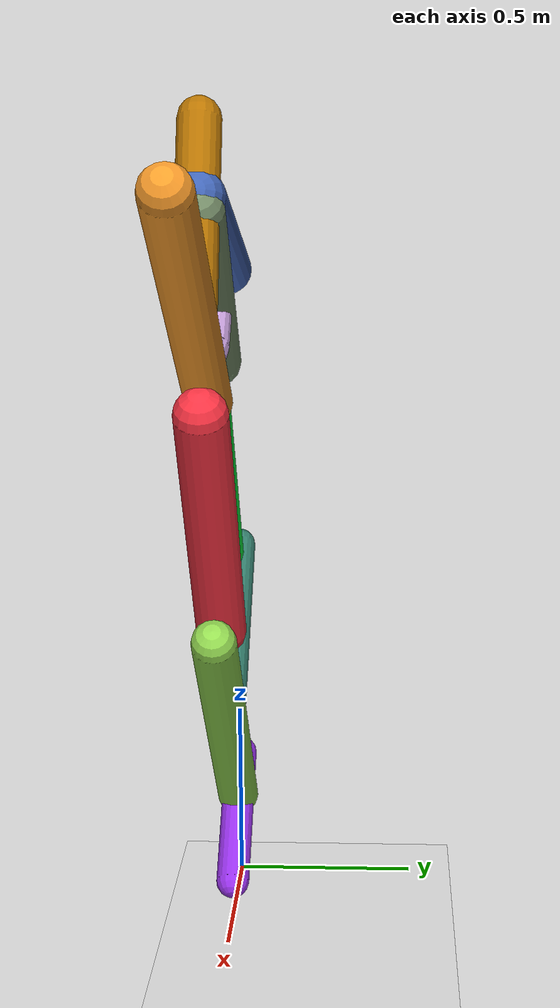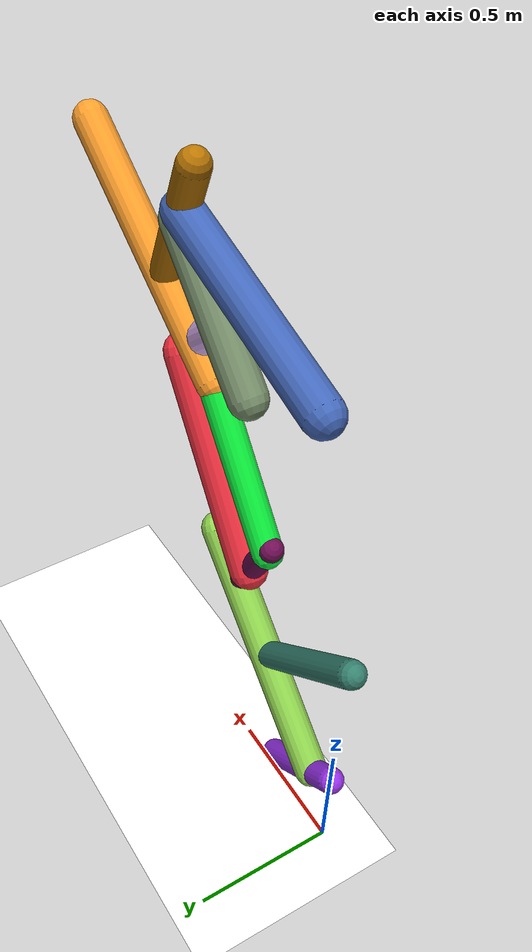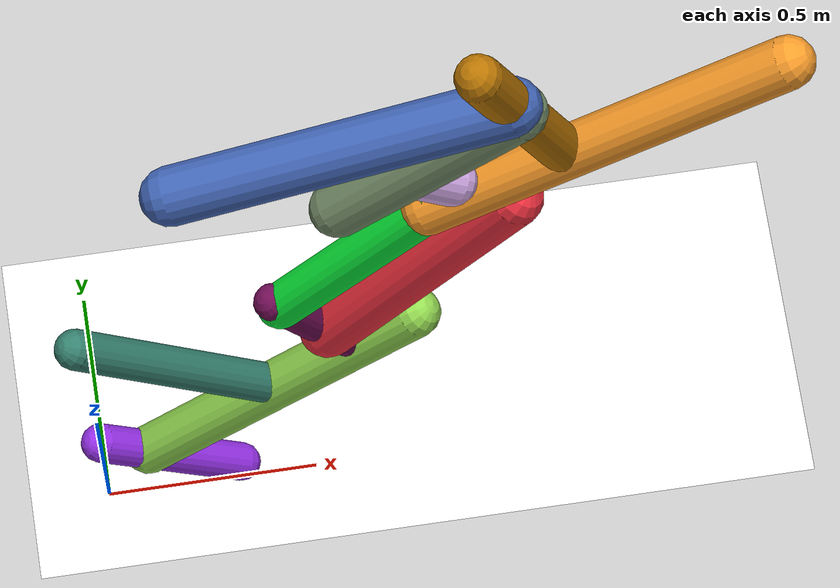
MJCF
<mujoco model="morphology">
  <option timestep="0.01"/>
  <default>
    <default class="/"/>
    <default class="0/"/>
    <default class="0/1/"/>
    <default class="0/1/2/"/>
    <default class="0/1/3/"/>
    <default class="0/1/3/4/"/>
    <default class="0/1/3/5/"/>
    <default class="0/1/3/5/6/"/>
    <default class="0/1/3/5/6/7/"/>
    <default class="0/1/3/5/6/7/8/"/>
    <default class="0/1/3/5/6/7/9/"/>
    <default class="0/1/3/5/6/7/9/10/"/>
  </default>
  <asset>
    <texture name="texplane" type="2d" builtin="checker" rgb1="0.10000000000000001 0.20000000000000001 0.29999999999999999" rgb2="0.20000000000000001 0.29999999999999999 0.40000000000000002" width="300" height="300"/>
    <material name="MatPlane" class="/" texture="texplane" texrepeat="20 20" specular="1" shininess="1" reflectance="0.5"/>
  </asset>
  <worldbody>
    <light name="//unnamed_light_0" class="/" directional="true" pos="0 0 1.5" dir="0 0 -1.3" cutoff="100" exponent="1" diffuse="1 1 1" specular="0.10000000000000001 0.10000000000000001 0.10000000000000001"/>
    <geom name="ground" class="/" type="plane" size="15 15 0.5" material="MatPlane" rgba="1 1 1 1"/>
    <site name="body" class="/" size="9.9999999999999995e-07 9.9999999999999995e-07 9.9999999999999995e-07" pos="0 0 0.3667691111564636"/>
    <body pos="0 0 0.3667691111564636" name="0/">
      <joint name="0/rootx/" class="/" type="slide" axis="1 0 0" limited="false" stiffness="0" armature="0" damping="0"/>
      <joint name="0/rootz/" class="/" type="slide" axis="0 0 1" limited="false" stiffness="0" armature="0" damping="0"/>
      <joint name="0/rooty/" class="/" type="hinge" axis="0 1 0" limited="false" stiffness="0" armature="0" damping="0"/>
      <geom name="0/geom" class="0/" type="capsule" contype="1" conaffinity="1" condim="3" size="0.046061769142935187" rgba="0.59159661432133115 0.19264782109540135 0.91164516663067263 1" friction="0.59999999999999998 0.10000000000000001 0.10000000000000001" fromto="0 0 0 0.32221489283608196 0 -0.2667691219751101"/>
      <site name="0/end0" class="0/" size="0.0050000000000000001" pos="0.32221489283608196 0 -0.2667691219751101"/>
      <site name="0/attach1" class="0/" size="9.9999999999999995e-07 9.9999999999999995e-07 9.9999999999999995e-07" pos="0.10848181467294779 0 -0.089814589871521341"/>
      <body pos="0.10848181467294779 0 -0.089814589871521341" name="0/1/">
        <joint name="0/1/joint/" class="0/" type="hinge" axis="0 1 0" limited="true" range="-37.944927507809552 37.944927507809552"/>
        <geom name="0/1/geom" class="0/1/" type="capsule" contype="1" conaffinity="1" condim="3" size="0.057797295729401857" rgba="0.57586457697442284 0.84723442904876112 0.31484622777819016 1" friction="0.59999999999999998 0.10000000000000001 0.10000000000000001" fromto="0 0 0 0.63276937120370413 0 0.65454441747372405"/>
        <site name="0/1/end1" class="0/1/" size="0.0050000000000000001" pos="0.63276937120370413 0 0.65454441747372405"/>
        <site name="0/1/attach2" class="0/1/" size="9.9999999999999995e-07 9.9999999999999995e-07 9.9999999999999995e-07" pos="0.30885725985937806 0 0.31948574699913318"/>
        <body pos="0.30885725985937806 0 0.31948574699913318" name="0/1/2/">
          <joint name="0/1/2/joint/" class="0/1/" type="hinge" axis="0 1 0" limited="true" range="-57.165948841756709 57.165948841756709"/>
          <geom name="0/1/2/geom" class="0/1/2/" type="capsule" contype="1" conaffinity="1" condim="3" size="0.04691305992288456" rgba="0.20511124175174777 0.49817210016656188 0.42789058684797987 1" friction="0.59999999999999998 0.10000000000000001 0.10000000000000001" fromto="0 0 0 -0.43699416608048985 0 0.39814920475010118"/>
          <site name="0/1/2/end2" class="0/1/2/" size="0.0050000000000000001" pos="-0.43699416608048985 0 0.39814920475010118"/>
        </body>
        <site name="0/1/attach3" class="0/1/" size="9.9999999999999995e-07 9.9999999999999995e-07 9.9999999999999995e-07" pos="0.4987964832854952 0 0.51596121501421899"/>
        <body pos="0.4987964832854952 0 0.51596121501421899" name="0/1/3/">
          <joint name="0/1/3/joint/" class="0/1/" type="hinge" axis="0 1 0" limited="true" range="-34.073173916676382 34.073173916676382"/>
          <geom name="0/1/3/geom" class="0/1/3/" type="capsule" contype="1" conaffinity="1" condim="3" size="0.041939650775228002" rgba="0.43635687783313293 0.051108418237526876 0.33187192591376113 1" friction="0.59999999999999998 0.10000000000000001 0.10000000000000001" fromto="0 0 0 -0.18357090317346159 0 0.32436191366947531"/>
          <site name="0/1/3/end3" class="0/1/3/" size="0.0050000000000000001" pos="-0.18357090317346159 0 0.32436191366947531"/>
          <site name="0/1/3/attach4" class="0/1/3/" size="9.9999999999999995e-07 9.9999999999999995e-07 9.9999999999999995e-07" pos="-0.063553133787164595 0 0.11229566199507071"/>
          <body pos="-0.063553133787164595 0 0.11229566199507071" name="0/1/3/4/">
            <geom name="0/1/3/4/geom" class="0/1/3/4/" type="capsule" contype="1" conaffinity="1" condim="3" size="0.065253755162095292" rgba="0.97418766751516994 0.19834423440975479 0.25933309237103008 1" friction="0.59999999999999998 0.10000000000000001 0.10000000000000001" fromto="0 0 0 0.40886960949461404 0 0.62946019359496019"/>
            <site name="0/1/3/4/end4" class="0/1/3/4/" size="0.0050000000000000001" pos="0.40886960949461404 0 0.62946019359496019"/>
          </body>
          <site name="0/1/3/attach5" class="0/1/3/" size="9.9999999999999995e-07 9.9999999999999995e-07 9.9999999999999995e-07" pos="-0.16640375499054852 0 0.29402829902470007"/>
          <body pos="-0.16640375499054852 0 0.29402829902470007" name="0/1/3/5/">
            <joint name="0/1/3/5/joint/" class="0/1/3/" type="hinge" axis="0 1 0" limited="true" range="-53.749413801192162 53.749413801192162"/>
            <geom name="0/1/3/5/geom" class="0/1/3/5/" type="capsule" contype="1" conaffinity="1" condim="3" size="0.05164551519670376" rgba="0.043552267455258975 0.95116607733872804 0.23488450032554742 1" friction="0.59999999999999998 0.10000000000000001 0.10000000000000001" fromto="0 0 0 0.33758139252230968 0 0.46231282594057443"/>
            <site name="0/1/3/5/end5" class="0/1/3/5/" size="0.0050000000000000001" pos="0.33758139252230968 0 0.46231282594057443"/>
            <site name="0/1/3/5/attach6" class="0/1/3/5/" size="9.9999999999999995e-07 9.9999999999999995e-07 9.9999999999999995e-07" pos="0.32608352749825359 0 0.44656666637935577"/>
            <body pos="0.32608352749825359 0 0.44656666637935577" name="0/1/3/5/6/">
              <joint name="0/1/3/5/6/joint/" class="0/1/3/5/" type="hinge" axis="0 1 0" limited="true" range="-43.113897231338242 43.113897231338242"/>
              <geom name="0/1/3/5/6/geom" class="0/1/3/5/6/" type="capsule" contype="1" conaffinity="1" condim="3" size="0.057447902707528836" rgba="0.97109110850058267 0.60857980469736916 0.16491153752612131 1" friction="0.59999999999999998 0.10000000000000001 0.10000000000000001" fromto="0 0 0 0.73863228095714306 0 0.51919217122158812"/>
              <site name="0/1/3/5/6/end6" class="0/1/3/5/6/" size="0.0050000000000000001" pos="0.73863228095714306 0 0.51919217122158812"/>
              <site name="0/1/3/5/6/attach7" class="0/1/3/5/6/" size="9.9999999999999995e-07 9.9999999999999995e-07 9.9999999999999995e-07" pos="0.29283867890470322 0 0.2058392970872823"/>
              <body pos="0.29283867890470322 0 0.2058392970872823" name="0/1/3/5/6/7/">
                <joint name="0/1/3/5/6/7/joint/" class="0/1/3/5/6/" type="hinge" axis="0 1 0" limited="true" range="-55.669827800461363 55.669827800461363"/>
                <geom name="0/1/3/5/6/7/geom" class="0/1/3/5/6/7/" type="capsule" contype="1" conaffinity="1" condim="3" size="0.051031312131205188" rgba="0.71785755875866364 0.45478656366014425 0.0091260712381653342 1" friction="0.59999999999999998 0.10000000000000001 0.10000000000000001" fromto="0 0 0 -0.19052338821950787 0 0.44571926558435959"/>
                <site name="0/1/3/5/6/7/end7" class="0/1/3/5/6/7/" size="0.0050000000000000001" pos="-0.19052338821950787 0 0.44571926558435959"/>
                <site name="0/1/3/5/6/7/attach8" class="0/1/3/5/6/7/" size="9.9999999999999995e-07 9.9999999999999995e-07 9.9999999999999995e-07" pos="-0.11979223323207085 0 0.28024751563515338"/>
                <body pos="-0.11979223323207085 0 0.28024751563515338" name="0/1/3/5/6/7/8/">
                  <joint name="0/1/3/5/6/7/8/joint/" class="0/1/3/5/6/7/" type="hinge" axis="0 1 0" limited="true" range="-34.1973057424551 34.1973057424551"/>
                  <geom name="0/1/3/5/6/7/8/geom" class="0/1/3/5/6/7/8/" type="capsule" contype="1" conaffinity="1" condim="3" size="0.063704816134400766" rgba="0.2575787782395591 0.39830406215127256 0.71422840453554659 1" friction="0.59999999999999998 0.10000000000000001 0.10000000000000001" fromto="0 0 0 -0.71102750564598205 0 -0.22087850175179957"/>
                  <site name="0/1/3/5/6/7/8/end8" class="0/1/3/5/6/7/8/" size="0.0050000000000000001" pos="-0.71102750564598205 0 -0.22087850175179957"/>
                </body>
                <site name="0/1/3/5/6/7/attach9" class="0/1/3/5/6/7/" size="9.9999999999999995e-07 9.9999999999999995e-07 9.9999999999999995e-07" pos="-0.10713506870160436 0 0.25063675691612342"/>
                <body pos="-0.10713506870160436 0 0.25063675691612342" name="0/1/3/5/6/7/9/">
                  <joint name="0/1/3/5/6/7/9/joint/" class="0/1/3/5/6/7/" type="hinge" axis="0 1 0" limited="true" range="-38.948816186458259 38.948816186458259"/>
                  <geom name="0/1/3/5/6/7/9/geom" class="0/1/3/5/6/7/9/" type="capsule" contype="1" conaffinity="1" condim="3" size="0.062715619842183615" rgba="0.46635061781266585 0.56126472091713575 0.41577614364611071 1" friction="0.59999999999999998 0.10000000000000001 0.10000000000000001" fromto="0 0 0 -0.37532611039842267 0 -0.38410439957974468"/>
                  <site name="0/1/3/5/6/7/9/end9" class="0/1/3/5/6/7/9/" size="0.0050000000000000001" pos="-0.37532611039842267 0 -0.38410439957974468"/>
                  <site name="0/1/3/5/6/7/9/attach10" class="0/1/3/5/6/7/9/" size="9.9999999999999995e-07 9.9999999999999995e-07 9.9999999999999995e-07" pos="-0.22918665526752177 0 -0.23454697175150577"/>
                  <body pos="-0.22918665526752177 0 -0.23454697175150577" name="0/1/3/5/6/7/9/10/">
                    <joint name="0/1/3/5/6/7/9/10/joint/" class="0/1/3/5/6/7/9/" type="hinge" axis="0 1 0" limited="true" range="-68.545248020977766 68.545248020977766"/>
                    <geom name="0/1/3/5/6/7/9/10/geom" class="0/1/3/5/6/7/9/10/" type="capsule" contype="1" conaffinity="1" condim="3" size="0.055096859897440648" rgba="0.86069995883866957 0.69461299055229186 0.94820152073046504 1" friction="0.59999999999999998 0.10000000000000001 0.10000000000000001" fromto="0 0 0 0.094294137468760142 0 -0.083689482510265978"/>
                    <site name="0/1/3/5/6/7/9/10/end10" class="0/1/3/5/6/7/9/10/" size="0.0050000000000000001" pos="0.094294137468760142 0 -0.083689482510265978"/>
                  </body>
                </body>
              </body>
            </body>
          </body>
        </body>
      </body>
      <camera name="0/side" class="0/" mode="trackcom" pos="0.40000000000000002 -4 0.20000000000000001" quat="0.70699999999999996 0.70699999999999996 0 0"/>
    </body>
  </worldbody>
  <actuator>
    <motor name="0/1/motor" class="0/1/" ctrllimited="true" ctrlrange="-1 1" gear="77" joint="0/1/joint/"/>
    <motor name="0/1/2/motor" class="0/1/2/" ctrllimited="true" ctrlrange="-1 1" gear="75" joint="0/1/2/joint/"/>
    <motor name="0/1/3/motor" class="0/1/3/" ctrllimited="true" ctrlrange="-1 1" gear="63" joint="0/1/3/joint/"/>
    <motor name="0/1/3/5/motor" class="0/1/3/5/" ctrllimited="true" ctrlrange="-1 1" gear="89" joint="0/1/3/5/joint/"/>
    <motor name="0/1/3/5/6/motor" class="0/1/3/5/6/" ctrllimited="true" ctrlrange="-1 1" gear="74" joint="0/1/3/5/6/joint/"/>
    <motor name="0/1/3/5/6/7/motor" class="0/1/3/5/6/7/" ctrllimited="true" ctrlrange="-1 1" gear="86" joint="0/1/3/5/6/7/joint/"/>
    <motor name="0/1/3/5/6/7/8/motor" class="0/1/3/5/6/7/8/" ctrllimited="true" ctrlrange="-1 1" gear="62" joint="0/1/3/5/6/7/8/joint/"/>
    <motor name="0/1/3/5/6/7/9/motor" class="0/1/3/5/6/7/9/" ctrllimited="true" ctrlrange="-1 1" gear="82" joint="0/1/3/5/6/7/9/joint/"/>
    <motor name="0/1/3/5/6/7/9/10/motor" class="0/1/3/5/6/7/9/10/" ctrllimited="true" ctrlrange="-1 1" gear="54" joint="0/1/3/5/6/7/9/10/joint/"/>
  </actuator>
  <sensor>
    <subtreelinvel name="velocity" body="0/"/>
  </sensor>
</mujoco>
